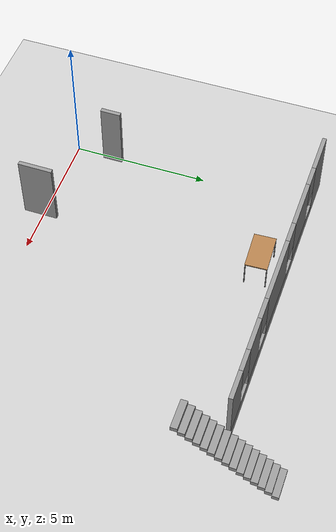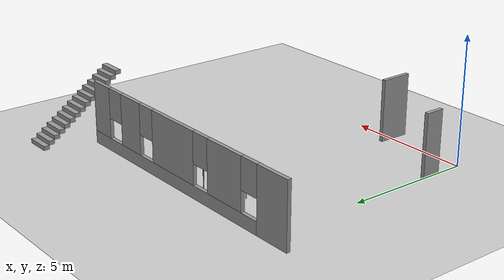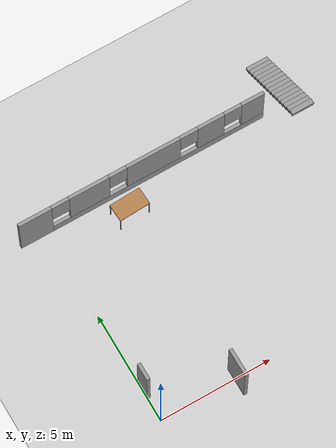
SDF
<sdf version="1.6">
 <world name="default">
  <model name="ground_plane">
   <static>1</static>
   <link name="link">
    <collision name="collision">
     <geometry><plane><normal>0 0 1</normal><size>100 100</size></plane></geometry>
     <surface><friction><ode><mu>100</mu><mu2>50</mu2></ode></friction></surface>
    </collision>
    <visual name="visual">
     <cast_shadows>0</cast_shadows>
     <geometry><plane><normal>0 0 1</normal><size>100 100</size></plane></geometry>
     <material>
      <script><uri>file://media/materials/scripts/gazebo.material</uri><name>Gazebo/Grey</name></script>
     </material>
    </visual>
   </link>
  </model>
  <model name="pared_lab">
   <pose>4.41876 9.09094 0 0 -0 0</pose>
   <link name="Wall_5">
    <visual name="Wall_5_Visual_0">
     <pose>-4.88226 0 1.25 0 -0 0</pose>
     <geometry><box><size>1.48549 0.15 2.5</size></box></geometry>
     <material>
      <script><uri>file://media/materials/scripts/gazebo.material</uri><name>Gazebo/Grey</name></script>
      <ambient>1 1 1 1</ambient>
     </material>
    </visual>
    <collision name="Wall_5_Collision_0">
     <geometry><box><size>1.48549 0.15 2.5</size></box></geometry>
     <pose>-4.88226 0 1.25 0 -0 0</pose>
    </collision>
    <visual name="Wall_5_Visual_1">
     <pose>0.742744 0 0.25 0 -0 0</pose>
     <geometry><box><size>9.76451 0.15 0.5</size></box></geometry>
     <material>
      <script><uri>file://media/materials/scripts/gazebo.material</uri><name>Gazebo/Grey</name></script>
      <ambient>1 1 1 1</ambient>
     </material>
    </visual>
    <collision name="Wall_5_Collision_1">
     <geometry><box><size>9.76451 0.15 0.5</size></box></geometry>
     <pose>0.742744 0 0.25 0 -0 0</pose>
    </collision>
    <visual name="Wall_5_Visual_2">
     <pose>-2.4287 0 1.5 0 -0 0</pose>
     <geometry><box><size>1.82162 0.15 2</size></box></geometry>
     <material>
      <script><uri>file://media/materials/scripts/gazebo.material</uri><name>Gazebo/Grey</name></script>
      <ambient>1 1 1 1</ambient>
     </material>
    </visual>
    <collision name="Wall_5_Collision_2">
     <geometry><box><size>1.82162 0.15 2</size></box></geometry>
     <pose>-2.4287 0 1.5 0 -0 0</pose>
    </collision>
    <visual name="Wall_5_Visual_3">
     <pose>0.513937 0 1.5 0 -0 0</pose>
     <geometry><box><size>2.46365 0.15 2</size></box></geometry>
     <material>
      <script><uri>file://media/materials/scripts/gazebo.material</uri><name>Gazebo/Grey</name></script>
      <ambient>1 1 1 1</ambient>
     </material>
    </visual>
    <collision name="Wall_5_Collision_3">
     <geometry><box><size>2.46365 0.15 2</size></box></geometry>
     <pose>0.513937 0 1.5 0 -0 0</pose>
    </collision>
    <visual name="Wall_5_Visual_4">
     <pose>3.16231 0 1.5 0 -0 0</pose>
     <geometry><box><size>1.2331 0.15 2</size></box></geometry>
     <material>
      <script><uri>file://media/materials/scripts/gazebo.material</uri><name>Gazebo/Grey</name></script>
      <ambient>1 1 1 1</ambient>
     </material>
    </visual>
    <collision name="Wall_5_Collision_4">
     <geometry><box><size>1.2331 0.15 2</size></box></geometry>
     <pose>3.16231 0 1.5 0 -0 0</pose>
    </collision>
    <visual name="Wall_5_Visual_5">
     <pose>5.10193 0 1.5 0 -0 0</pose>
     <geometry><box><size>1.04614 0.15 2</size></box></geometry>
     <material>
      <script><uri>file://media/materials/scripts/gazebo.material</uri><name>Gazebo/Grey</name></script>
      <ambient>1 1 1 1</ambient>
     </material>
    </visual>
    <collision name="Wall_5_Collision_5">
     <geometry><box><size>1.04614 0.15 2</size></box></geometry>
     <pose>5.10193 0 1.5 0 -0 0</pose>
    </collision>
    <visual name="Wall_5_Visual_6">
     <pose>-3.73951 0 1.9 0 -0 0</pose>
     <geometry><box><size>0.8 0.15 1.2</size></box></geometry>
     <material>
      <script><uri>file://media/materials/scripts/gazebo.material</uri><name>Gazebo/Grey</name></script>
      <ambient>1 1 1 1</ambient>
     </material>
    </visual>
    <collision name="Wall_5_Collision_6">
     <geometry><box><size>0.8 0.15 1.2</size></box></geometry>
     <pose>-3.73951 0 1.9 0 -0 0</pose>
    </collision>
    <visual name="Wall_5_Visual_7">
     <pose>-1.11789 0 1.9 0 -0 0</pose>
     <geometry><box><size>0.8 0.15 1.2</size></box></geometry>
     <material>
      <script><uri>file://media/materials/scripts/gazebo.material</uri><name>Gazebo/Grey</name></script>
      <ambient>1 1 1 1</ambient>
     </material>
    </visual>
    <collision name="Wall_5_Collision_7">
     <geometry><box><size>0.8 0.15 1.2</size></box></geometry>
     <pose>-1.11789 0 1.9 0 -0 0</pose>
    </collision>
    <visual name="Wall_5_Visual_8">
     <pose>2.14576 0 1.9 0 -0 0</pose>
     <geometry><box><size>0.8 0.15 1.2</size></box></geometry>
     <material>
      <script><uri>file://media/materials/scripts/gazebo.material</uri><name>Gazebo/Grey</name></script>
      <ambient>1 1 1 1</ambient>
     </material>
    </visual>
    <collision name="Wall_5_Collision_8">
     <geometry><box><size>0.8 0.15 1.2</size></box></geometry>
     <pose>2.14576 0 1.9 0 -0 0</pose>
    </collision>
    <visual name="Wall_5_Visual_9">
     <pose>4.17886 0 1.9 0 -0 0</pose>
     <geometry><box><size>0.8 0.15 1.2</size></box></geometry>
     <material>
      <script><uri>file://media/materials/scripts/gazebo.material</uri><name>Gazebo/Grey</name></script>
      <ambient>1 1 1 1</ambient>
     </material>
    </visual>
    <collision name="Wall_5_Collision_9">
     <geometry><box><size>0.8 0.15 1.2</size></box></geometry>
     <pose>4.17886 0 1.9 0 -0 0</pose>
    </collision>
   </link>
   <static>1</static>
  </model>
  <model name="table_clone_1">
   <static>0</static>
   <link name="link">
    <collision name="surface">
     <pose>0 0 1 0 -0 0</pose>
     <geometry><box><size>1.5 0.8 0.03</size></box></geometry>
     <surface><friction><ode><mu>0.6</mu><mu2>0.6</mu2></ode></friction></surface>
    </collision>
    <visual name="visual1">
     <pose>0 0 1 0 -0 0</pose>
     <geometry><box><size>1.4 0.8 0.04</size></box></geometry>
     <material>
      <script><uri>file://media/materials/scripts/gazebo.material</uri><name>Gazebo/Wood</name></script>
     </material>
    </visual>
    <collision name="front_left_leg">
     <pose>0.68 0.38 0.5 0 -0 0</pose>
     <geometry><cylinder><radius>0.02</radius><length>1</length></cylinder></geometry>
    </collision>
    <visual name="front_left_leg">
     <pose>0.68 0.38 0.5 0 -0 0</pose>
     <geometry><cylinder><radius>0.02</radius><length>1</length></cylinder></geometry>
     <material>
      <script><uri>file://media/materials/scripts/gazebo.material</uri><name>Gazebo/Grey</name></script>
     </material>
    </visual>
    <collision name="front_right_leg">
     <pose>0.68 -0.38 0.5 0 -0 0</pose>
     <geometry><cylinder><radius>0.02</radius><length>1</length></cylinder></geometry>
    </collision>
    <visual name="front_right_leg">
     <pose>0.68 -0.38 0.5 0 -0 0</pose>
     <geometry><cylinder><radius>0.02</radius><length>1</length></cylinder></geometry>
     <material>
      <script><uri>file://media/materials/scripts/gazebo.material</uri><name>Gazebo/Grey</name></script>
     </material>
    </visual>
    <collision name="back_right_leg">
     <pose>-0.68 -0.38 0.5 0 -0 0</pose>
     <geometry><cylinder><radius>0.02</radius><length>1</length></cylinder></geometry>
    </collision>
    <visual name="back_right_leg">
     <pose>-0.68 -0.38 0.5 0 -0 0</pose>
     <geometry><cylinder><radius>0.02</radius><length>1</length></cylinder></geometry>
     <material>
      <script><uri>file://media/materials/scripts/gazebo.material</uri><name>Gazebo/Grey</name></script>
     </material>
    </visual>
    <collision name="back_left_leg">
     <pose>-0.68 0.38 0.5 0 -0 0</pose>
     <geometry><cylinder><radius>0.02</radius><length>1</length></cylinder></geometry>
    </collision>
    <visual name="back_left_leg">
     <pose>-0.68 0.38 0.5 0 -0 0</pose>
     <geometry><cylinder><radius>0.02</radius><length>1</length></cylinder></geometry>
     <material>
      <script><uri>file://media/materials/scripts/gazebo.material</uri><name>Gazebo/Grey</name></script>
     </material>
    </visual>
    <inertial>
     <inertia><ixx>1</ixx><ixy>0</ixy><ixz>0</ixz><iyy>1</iyy><iyz>0</iyz><izz>1</izz></inertia>
     <mass>1</mass>
    </inertial>
   </link>
   <pose>3.2962 8.13733 -1e-06 0 1e-06 0.048714</pose>
  </model>
  <model name="paredes_simplepilab_0">
   <link name="Stairs_0">
    <visual name="Stairs_0_Visual_0">
     <pose>6.50578 5.54062 0.083333 0 -0 0</pose>
     <geometry><box><size>1 0.233333 0.166667</size></box></geometry>
     <material>
      <script><uri>file://media/materials/scripts/gazebo.material</uri><name>Gazebo/Grey</name></script>
      <ambient>1 1 1 1</ambient>
      <diffuse>0.7 0.7 0.7 1</diffuse>
      <specular>0.01 0.01 0.01 1</specular>
      <emissive>0 0 0 1</emissive>
     </material>
    </visual>
    <visual name="Stairs_0_Visual_1">
     <pose>6.50578 5.30728 0.25 0 -0 0</pose>
     <geometry><box><size>1 0.233333 0.166667</size></box></geometry>
     <material>
      <script><uri>file://media/materials/scripts/gazebo.material</uri><name>Gazebo/Grey</name></script>
      <ambient>1 1 1 1</ambient>
      <diffuse>0.7 0.7 0.7 1</diffuse>
      <specular>0.01 0.01 0.01 1</specular>
      <emissive>0 0 0 1</emissive>
     </material>
    </visual>
    <visual name="Stairs_0_Visual_2">
     <pose>6.50578 5.07395 0.416667 0 -0 0</pose>
     <geometry><box><size>1 0.233333 0.166667</size></box></geometry>
     <material>
      <script><uri>file://media/materials/scripts/gazebo.material</uri><name>Gazebo/Grey</name></script>
      <ambient>1 1 1 1</ambient>
      <diffuse>0.7 0.7 0.7 1</diffuse>
      <specular>0.01 0.01 0.01 1</specular>
      <emissive>0 0 0 1</emissive>
     </material>
    </visual>
    <visual name="Stairs_0_Visual_3">
     <pose>6.50578 4.84062 0.583333 0 -0 0</pose>
     <geometry><box><size>1 0.233333 0.166667</size></box></geometry>
     <material>
      <script><uri>file://media/materials/scripts/gazebo.material</uri><name>Gazebo/Grey</name></script>
      <ambient>1 1 1 1</ambient>
      <diffuse>0.7 0.7 0.7 1</diffuse>
      <specular>0.01 0.01 0.01 1</specular>
      <emissive>0 0 0 1</emissive>
     </material>
    </visual>
    <visual name="Stairs_0_Visual_4">
     <pose>6.50578 4.60728 0.75 0 -0 0</pose>
     <geometry><box><size>1 0.233333 0.166667</size></box></geometry>
     <material>
      <script><uri>file://media/materials/scripts/gazebo.material</uri><name>Gazebo/Grey</name></script>
      <ambient>1 1 1 1</ambient>
      <diffuse>0.7 0.7 0.7 1</diffuse>
      <specular>0.01 0.01 0.01 1</specular>
      <emissive>0 0 0 1</emissive>
     </material>
    </visual>
    <visual name="Stairs_0_Visual_5">
     <pose>6.50578 4.37395 0.916667 0 -0 0</pose>
     <geometry><box><size>1 0.233333 0.166667</size></box></geometry>
     <material>
      <script><uri>file://media/materials/scripts/gazebo.material</uri><name>Gazebo/Grey</name></script>
      <ambient>1 1 1 1</ambient>
      <diffuse>0.7 0.7 0.7 1</diffuse>
      <specular>0.01 0.01 0.01 1</specular>
      <emissive>0 0 0 1</emissive>
     </material>
    </visual>
    <visual name="Stairs_0_Visual_6">
     <pose>6.50578 4.14062 1.08333 0 -0 0</pose>
     <geometry><box><size>1 0.233333 0.166667</size></box></geometry>
     <material>
      <script><uri>file://media/materials/scripts/gazebo.material</uri><name>Gazebo/Grey</name></script>
      <ambient>1 1 1 1</ambient>
      <diffuse>0.7 0.7 0.7 1</diffuse>
      <specular>0.01 0.01 0.01 1</specular>
      <emissive>0 0 0 1</emissive>
     </material>
    </visual>
    <visual name="Stairs_0_Visual_7">
     <pose>6.50578 3.90728 1.25 0 -0 0</pose>
     <geometry><box><size>1 0.233333 0.166667</size></box></geometry>
     <material>
      <script><uri>file://media/materials/scripts/gazebo.material</uri><name>Gazebo/Grey</name></script>
      <ambient>1 1 1 1</ambient>
      <diffuse>0.7 0.7 0.7 1</diffuse>
      <specular>0.01 0.01 0.01 1</specular>
      <emissive>0 0 0 1</emissive>
     </material>
    </visual>
    <visual name="Stairs_0_Visual_8">
     <pose>6.50578 3.67395 1.41667 0 -0 0</pose>
     <geometry><box><size>1 0.233333 0.166667</size></box></geometry>
     <material>
      <script><uri>file://media/materials/scripts/gazebo.material</uri><name>Gazebo/Grey</name></script>
      <ambient>1 1 1 1</ambient>
      <diffuse>0.7 0.7 0.7 1</diffuse>
      <specular>0.01 0.01 0.01 1</specular>
      <emissive>0 0 0 1</emissive>
     </material>
    </visual>
    <visual name="Stairs_0_Visual_10">
     <pose>6.50578 3.20729 1.75 0 -0 0</pose>
     <geometry><box><size>1 0.233333 0.166667</size></box></geometry>
     <material>
      <script><uri>file://media/materials/scripts/gazebo.material</uri><name>Gazebo/Grey</name></script>
      <ambient>1 1 1 1</ambient>
      <diffuse>0.7 0.7 0.7 1</diffuse>
      <specular>0.01 0.01 0.01 1</specular>
      <emissive>0 0 0 1</emissive>
     </material>
    </visual>
    <visual name="Stairs_0_Visual_9">
     <pose>6.50578 3.44062 1.58333 0 -0 0</pose>
     <geometry><box><size>1 0.233333 0.166667</size></box></geometry>
     <material>
      <script><uri>file://media/materials/scripts/gazebo.material</uri><name>Gazebo/Grey</name></script>
      <ambient>1 1 1 1</ambient>
      <diffuse>0.7 0.7 0.7 1</diffuse>
      <specular>0.01 0.01 0.01 1</specular>
      <emissive>0 0 0 1</emissive>
     </material>
    </visual>
    <visual name="Stairs_0_Visual_11">
     <pose>6.50578 2.97395 1.91667 0 -0 0</pose>
     <geometry><box><size>1 0.233333 0.166667</size></box></geometry>
     <material>
      <script><uri>file://media/materials/scripts/gazebo.material</uri><name>Gazebo/Grey</name></script>
      <ambient>1 1 1 1</ambient>
      <diffuse>0.7 0.7 0.7 1</diffuse>
      <specular>0.01 0.01 0.01 1</specular>
      <emissive>0 0 0 1</emissive>
     </material>
    </visual>
    <visual name="Stairs_0_Visual_12">
     <pose>6.50578 2.74062 2.08333 0 -0 0</pose>
     <geometry><box><size>1 0.233333 0.166667</size></box></geometry>
     <material>
      <script><uri>file://media/materials/scripts/gazebo.material</uri><name>Gazebo/Grey</name></script>
      <ambient>1 1 1 1</ambient>
      <diffuse>0.7 0.7 0.7 1</diffuse>
      <specular>0.01 0.01 0.01 1</specular>
      <emissive>0 0 0 1</emissive>
     </material>
    </visual>
    <visual name="Stairs_0_Visual_13">
     <pose>6.50578 2.50728 2.25 0 -0 0</pose>
     <geometry><box><size>1 0.233333 0.166667</size></box></geometry>
     <material>
      <script><uri>file://media/materials/scripts/gazebo.material</uri><name>Gazebo/Grey</name></script>
      <ambient>1 1 1 1</ambient>
      <diffuse>0.7 0.7 0.7 1</diffuse>
      <specular>0.01 0.01 0.01 1</specular>
      <emissive>0 0 0 1</emissive>
     </material>
    </visual>
    <visual name="Stairs_0_Visual_14">
     <pose>6.50578 2.27395 2.41667 0 -0 0</pose>
     <geometry><box><size>1 0.233333 0.166667</size></box></geometry>
     <material>
      <script><uri>file://media/materials/scripts/gazebo.material</uri><name>Gazebo/Grey</name></script>
      <ambient>1 1 1 1</ambient>
      <diffuse>0.7 0.7 0.7 1</diffuse>
      <specular>0.01 0.01 0.01 1</specular>
      <emissive>0 0 0 1</emissive>
     </material>
    </visual>
    <collision name="Stairs_0_Collision_13">
     <pose>6.50578 2.50728 2.25 0 -0 0</pose>
     <geometry><box><size>1 0.233333 0.166667</size></box></geometry>
     <surface>
      <friction>
       <ode><mu>1</mu><mu2>1</mu2><fdir1>0 0 0</fdir1><slip1>0</slip1><slip2>0</slip2></ode>
       <torsional>
        <coefficient>1</coefficient>
        <patch_radius>0</patch_radius>
        <surface_radius>0</surface_radius>
        <use_patch_radius>1</use_patch_radius>
        <ode><slip>0</slip></ode>
       </torsional>
      </friction>
      <bounce><restitution_coefficient>0</restitution_coefficient><threshold>1e+06</threshold></bounce>
      <contact>
       <collide_without_contact>0</collide_without_contact>
       <collide_without_contact_bitmask>1</collide_without_contact_bitmask>
       <collide_bitmask>1</collide_bitmask>
       <ode>
        <soft_cfm>0</soft_cfm>
        <soft_erp>0.2</soft_erp>
        <kp>1e+13</kp>
        <kd>1</kd>
        <max_vel>0.01</max_vel>
        <min_depth>0</min_depth>
       </ode>
       <bullet>
        <split_impulse>1</split_impulse>
        <split_impulse_penetration_threshold>-0.01</split_impulse_penetration_threshold>
        <soft_cfm>0</soft_cfm>
        <soft_erp>0.2</soft_erp>
        <kp>1e+13</kp>
        <kd>1</kd>
       </bullet>
      </contact>
     </surface>
    </collision>
    <collision name="Stairs_0_Collision_0">
     <pose>6.50578 5.54062 0.083333 0 -0 0</pose>
     <geometry><box><size>1 0.233333 0.166667</size></box></geometry>
     <surface>
      <friction>
       <ode><mu>1</mu><mu2>1</mu2><fdir1>0 0 0</fdir1><slip1>0</slip1><slip2>0</slip2></ode>
       <torsional>
        <coefficient>1</coefficient>
        <patch_radius>0</patch_radius>
        <surface_radius>0</surface_radius>
        <use_patch_radius>1</use_patch_radius>
        <ode><slip>0</slip></ode>
       </torsional>
      </friction>
      <bounce><restitution_coefficient>0</restitution_coefficient><threshold>1e+06</threshold></bounce>
      <contact>
       <collide_without_contact>0</collide_without_contact>
       <collide_without_contact_bitmask>1</collide_without_contact_bitmask>
       <collide_bitmask>1</collide_bitmask>
       <ode>
        <soft_cfm>0</soft_cfm>
        <soft_erp>0.2</soft_erp>
        <kp>1e+13</kp>
        <kd>1</kd>
        <max_vel>0.01</max_vel>
        <min_depth>0</min_depth>
       </ode>
       <bullet>
        <split_impulse>1</split_impulse>
        <split_impulse_penetration_threshold>-0.01</split_impulse_penetration_threshold>
        <soft_cfm>0</soft_cfm>
        <soft_erp>0.2</soft_erp>
        <kp>1e+13</kp>
        <kd>1</kd>
       </bullet>
      </contact>
     </surface>
    </collision>
    <collision name="Stairs_0_Collision_1">
     <pose>6.50578 5.30728 0.25 0 -0 0</pose>
     <geometry><box><size>1 0.233333 0.166667</size></box></geometry>
     <surface>
      <friction>
       <ode><mu>1</mu><mu2>1</mu2><fdir1>0 0 0</fdir1><slip1>0</slip1><slip2>0</slip2></ode>
       <torsional>
        <coefficient>1</coefficient>
        <patch_radius>0</patch_radius>
        <surface_radius>0</surface_radius>
        <use_patch_radius>1</use_patch_radius>
        <ode><slip>0</slip></ode>
       </torsional>
      </friction>
      <bounce><restitution_coefficient>0</restitution_coefficient><threshold>1e+06</threshold></bounce>
      <contact>
       <collide_without_contact>0</collide_without_contact>
       <collide_without_contact_bitmask>1</collide_without_contact_bitmask>
       <collide_bitmask>1</collide_bitmask>
       <ode>
        <soft_cfm>0</soft_cfm>
        <soft_erp>0.2</soft_erp>
        <kp>1e+13</kp>
        <kd>1</kd>
        <max_vel>0.01</max_vel>
        <min_depth>0</min_depth>
       </ode>
       <bullet>
        <split_impulse>1</split_impulse>
        <split_impulse_penetration_threshold>-0.01</split_impulse_penetration_threshold>
        <soft_cfm>0</soft_cfm>
        <soft_erp>0.2</soft_erp>
        <kp>1e+13</kp>
        <kd>1</kd>
       </bullet>
      </contact>
     </surface>
    </collision>
    <collision name="Stairs_0_Collision_2">
     <pose>6.50578 5.07395 0.416667 0 -0 0</pose>
     <geometry><box><size>1 0.233333 0.166667</size></box></geometry>
     <surface>
      <friction>
       <ode><mu>1</mu><mu2>1</mu2><fdir1>0 0 0</fdir1><slip1>0</slip1><slip2>0</slip2></ode>
       <torsional>
        <coefficient>1</coefficient>
        <patch_radius>0</patch_radius>
        <surface_radius>0</surface_radius>
        <use_patch_radius>1</use_patch_radius>
        <ode><slip>0</slip></ode>
       </torsional>
      </friction>
      <bounce><restitution_coefficient>0</restitution_coefficient><threshold>1e+06</threshold></bounce>
      <contact>
       <collide_without_contact>0</collide_without_contact>
       <collide_without_contact_bitmask>1</collide_without_contact_bitmask>
       <collide_bitmask>1</collide_bitmask>
       <ode>
        <soft_cfm>0</soft_cfm>
        <soft_erp>0.2</soft_erp>
        <kp>1e+13</kp>
        <kd>1</kd>
        <max_vel>0.01</max_vel>
        <min_depth>0</min_depth>
       </ode>
       <bullet>
        <split_impulse>1</split_impulse>
        <split_impulse_penetration_threshold>-0.01</split_impulse_penetration_threshold>
        <soft_cfm>0</soft_cfm>
        <soft_erp>0.2</soft_erp>
        <kp>1e+13</kp>
        <kd>1</kd>
       </bullet>
      </contact>
     </surface>
    </collision>
    <collision name="Stairs_0_Collision_3">
     <pose>6.50578 4.84062 0.583333 0 -0 0</pose>
     <geometry><box><size>1 0.233333 0.166667</size></box></geometry>
     <surface>
      <friction>
       <ode><mu>1</mu><mu2>1</mu2><fdir1>0 0 0</fdir1><slip1>0</slip1><slip2>0</slip2></ode>
       <torsional>
        <coefficient>1</coefficient>
        <patch_radius>0</patch_radius>
        <surface_radius>0</surface_radius>
        <use_patch_radius>1</use_patch_radius>
        <ode><slip>0</slip></ode>
       </torsional>
      </friction>
      <bounce><restitution_coefficient>0</restitution_coefficient><threshold>1e+06</threshold></bounce>
      <contact>
       <collide_without_contact>0</collide_without_contact>
       <collide_without_contact_bitmask>1</collide_without_contact_bitmask>
       <collide_bitmask>1</collide_bitmask>
       <ode>
        <soft_cfm>0</soft_cfm>
        <soft_erp>0.2</soft_erp>
        <kp>1e+13</kp>
        <kd>1</kd>
        <max_vel>0.01</max_vel>
        <min_depth>0</min_depth>
       </ode>
       <bullet>
        <split_impulse>1</split_impulse>
        <split_impulse_penetration_threshold>-0.01</split_impulse_penetration_threshold>
        <soft_cfm>0</soft_cfm>
        <soft_erp>0.2</soft_erp>
        <kp>1e+13</kp>
        <kd>1</kd>
       </bullet>
      </contact>
     </surface>
    </collision>
    <collision name="Stairs_0_Collision_4">
     <pose>6.50578 4.60728 0.75 0 -0 0</pose>
     <geometry><box><size>1 0.233333 0.166667</size></box></geometry>
     <surface>
      <friction>
       <ode><mu>1</mu><mu2>1</mu2><fdir1>0 0 0</fdir1><slip1>0</slip1><slip2>0</slip2></ode>
       <torsional>
        <coefficient>1</coefficient>
        <patch_radius>0</patch_radius>
        <surface_radius>0</surface_radius>
        <use_patch_radius>1</use_patch_radius>
        <ode><slip>0</slip></ode>
       </torsional>
      </friction>
      <bounce><restitution_coefficient>0</restitution_coefficient><threshold>1e+06</threshold></bounce>
      <contact>
       <collide_without_contact>0</collide_without_contact>
       <collide_without_contact_bitmask>1</collide_without_contact_bitmask>
       <collide_bitmask>1</collide_bitmask>
       <ode>
        <soft_cfm>0</soft_cfm>
        <soft_erp>0.2</soft_erp>
        <kp>1e+13</kp>
        <kd>1</kd>
        <max_vel>0.01</max_vel>
        <min_depth>0</min_depth>
       </ode>
       <bullet>
        <split_impulse>1</split_impulse>
        <split_impulse_penetration_threshold>-0.01</split_impulse_penetration_threshold>
        <soft_cfm>0</soft_cfm>
        <soft_erp>0.2</soft_erp>
        <kp>1e+13</kp>
        <kd>1</kd>
       </bullet>
      </contact>
     </surface>
    </collision>
    <collision name="Stairs_0_Collision_9">
     <pose>6.50578 3.44062 1.58333 0 -0 0</pose>
     <geometry><box><size>1 0.233333 0.166667</size></box></geometry>
     <surface>
      <friction>
       <ode><mu>1</mu><mu2>1</mu2><fdir1>0 0 0</fdir1><slip1>0</slip1><slip2>0</slip2></ode>
       <torsional>
        <coefficient>1</coefficient>
        <patch_radius>0</patch_radius>
        <surface_radius>0</surface_radius>
        <use_patch_radius>1</use_patch_radius>
        <ode><slip>0</slip></ode>
       </torsional>
      </friction>
      <bounce><restitution_coefficient>0</restitution_coefficient><threshold>1e+06</threshold></bounce>
      <contact>
       <collide_without_contact>0</collide_without_contact>
       <collide_without_contact_bitmask>1</collide_without_contact_bitmask>
       <collide_bitmask>1</collide_bitmask>
       <ode>
        <soft_cfm>0</soft_cfm>
        <soft_erp>0.2</soft_erp>
        <kp>1e+13</kp>
        <kd>1</kd>
        <max_vel>0.01</max_vel>
        <min_depth>0</min_depth>
       </ode>
       <bullet>
        <split_impulse>1</split_impulse>
        <split_impulse_penetration_threshold>-0.01</split_impulse_penetration_threshold>
        <soft_cfm>0</soft_cfm>
        <soft_erp>0.2</soft_erp>
        <kp>1e+13</kp>
        <kd>1</kd>
       </bullet>
      </contact>
     </surface>
    </collision>
    <collision name="Stairs_0_Collision_5">
     <pose>6.50578 4.37395 0.916667 0 -0 0</pose>
     <geometry><box><size>1 0.233333 0.166667</size></box></geometry>
     <surface>
      <friction>
       <ode><mu>1</mu><mu2>1</mu2><fdir1>0 0 0</fdir1><slip1>0</slip1><slip2>0</slip2></ode>
       <torsional>
        <coefficient>1</coefficient>
        <patch_radius>0</patch_radius>
        <surface_radius>0</surface_radius>
        <use_patch_radius>1</use_patch_radius>
        <ode><slip>0</slip></ode>
       </torsional>
      </friction>
      <bounce><restitution_coefficient>0</restitution_coefficient><threshold>1e+06</threshold></bounce>
      <contact>
       <collide_without_contact>0</collide_without_contact>
       <collide_without_contact_bitmask>1</collide_without_contact_bitmask>
       <collide_bitmask>1</collide_bitmask>
       <ode>
        <soft_cfm>0</soft_cfm>
        <soft_erp>0.2</soft_erp>
        <kp>1e+13</kp>
        <kd>1</kd>
        <max_vel>0.01</max_vel>
        <min_depth>0</min_depth>
       </ode>
       <bullet>
        <split_impulse>1</split_impulse>
        <split_impulse_penetration_threshold>-0.01</split_impulse_penetration_threshold>
        <soft_cfm>0</soft_cfm>
        <soft_erp>0.2</soft_erp>
        <kp>1e+13</kp>
        <kd>1</kd>
       </bullet>
      </contact>
     </surface>
    </collision>
    <collision name="Stairs_0_Collision_6">
     <pose>6.50578 4.14062 1.08333 0 -0 0</pose>
     <geometry><box><size>1 0.233333 0.166667</size></box></geometry>
     <surface>
      <friction>
       <ode><mu>1</mu><mu2>1</mu2><fdir1>0 0 0</fdir1><slip1>0</slip1><slip2>0</slip2></ode>
       <torsional>
        <coefficient>1</coefficient>
        <patch_radius>0</patch_radius>
        <surface_radius>0</surface_radius>
        <use_patch_radius>1</use_patch_radius>
        <ode><slip>0</slip></ode>
       </torsional>
      </friction>
      <bounce><restitution_coefficient>0</restitution_coefficient><threshold>1e+06</threshold></bounce>
      <contact>
       <collide_without_contact>0</collide_without_contact>
       <collide_without_contact_bitmask>1</collide_without_contact_bitmask>
       <collide_bitmask>1</collide_bitmask>
       <ode>
        <soft_cfm>0</soft_cfm>
        <soft_erp>0.2</soft_erp>
        <kp>1e+13</kp>
        <kd>1</kd>
        <max_vel>0.01</max_vel>
        <min_depth>0</min_depth>
       </ode>
       <bullet>
        <split_impulse>1</split_impulse>
        <split_impulse_penetration_threshold>-0.01</split_impulse_penetration_threshold>
        <soft_cfm>0</soft_cfm>
        <soft_erp>0.2</soft_erp>
        <kp>1e+13</kp>
        <kd>1</kd>
       </bullet>
      </contact>
     </surface>
    </collision>
    <collision name="Stairs_0_Collision_7">
     <pose>6.50578 3.90728 1.25 0 -0 0</pose>
     <geometry><box><size>1 0.233333 0.166667</size></box></geometry>
     <surface>
      <friction>
       <ode><mu>1</mu><mu2>1</mu2><fdir1>0 0 0</fdir1><slip1>0</slip1><slip2>0</slip2></ode>
       <torsional>
        <coefficient>1</coefficient>
        <patch_radius>0</patch_radius>
        <surface_radius>0</surface_radius>
        <use_patch_radius>1</use_patch_radius>
        <ode><slip>0</slip></ode>
       </torsional>
      </friction>
      <bounce><restitution_coefficient>0</restitution_coefficient><threshold>1e+06</threshold></bounce>
      <contact>
       <collide_without_contact>0</collide_without_contact>
       <collide_without_contact_bitmask>1</collide_without_contact_bitmask>
       <collide_bitmask>1</collide_bitmask>
       <ode>
        <soft_cfm>0</soft_cfm>
        <soft_erp>0.2</soft_erp>
        <kp>1e+13</kp>
        <kd>1</kd>
        <max_vel>0.01</max_vel>
        <min_depth>0</min_depth>
       </ode>
       <bullet>
        <split_impulse>1</split_impulse>
        <split_impulse_penetration_threshold>-0.01</split_impulse_penetration_threshold>
        <soft_cfm>0</soft_cfm>
        <soft_erp>0.2</soft_erp>
        <kp>1e+13</kp>
        <kd>1</kd>
       </bullet>
      </contact>
     </surface>
    </collision>
    <collision name="Stairs_0_Collision_8">
     <pose>6.50578 3.67395 1.41667 0 -0 0</pose>
     <geometry><box><size>1 0.233333 0.166667</size></box></geometry>
     <surface>
      <friction>
       <ode><mu>1</mu><mu2>1</mu2><fdir1>0 0 0</fdir1><slip1>0</slip1><slip2>0</slip2></ode>
       <torsional>
        <coefficient>1</coefficient>
        <patch_radius>0</patch_radius>
        <surface_radius>0</surface_radius>
        <use_patch_radius>1</use_patch_radius>
        <ode><slip>0</slip></ode>
       </torsional>
      </friction>
      <bounce><restitution_coefficient>0</restitution_coefficient><threshold>1e+06</threshold></bounce>
      <contact>
       <collide_without_contact>0</collide_without_contact>
       <collide_without_contact_bitmask>1</collide_without_contact_bitmask>
       <collide_bitmask>1</collide_bitmask>
       <ode>
        <soft_cfm>0</soft_cfm>
        <soft_erp>0.2</soft_erp>
        <kp>1e+13</kp>
        <kd>1</kd>
        <max_vel>0.01</max_vel>
        <min_depth>0</min_depth>
       </ode>
       <bullet>
        <split_impulse>1</split_impulse>
        <split_impulse_penetration_threshold>-0.01</split_impulse_penetration_threshold>
        <soft_cfm>0</soft_cfm>
        <soft_erp>0.2</soft_erp>
        <kp>1e+13</kp>
        <kd>1</kd>
       </bullet>
      </contact>
     </surface>
    </collision>
    <collision name="Stairs_0_Collision_11">
     <pose>6.50578 2.97395 1.91667 0 -0 0</pose>
     <geometry><box><size>1 0.233333 0.166667</size></box></geometry>
     <surface>
      <friction>
       <ode><mu>1</mu><mu2>1</mu2><fdir1>0 0 0</fdir1><slip1>0</slip1><slip2>0</slip2></ode>
       <torsional>
        <coefficient>1</coefficient>
        <patch_radius>0</patch_radius>
        <surface_radius>0</surface_radius>
        <use_patch_radius>1</use_patch_radius>
        <ode><slip>0</slip></ode>
       </torsional>
      </friction>
      <bounce><restitution_coefficient>0</restitution_coefficient><threshold>1e+06</threshold></bounce>
      <contact>
       <collide_without_contact>0</collide_without_contact>
       <collide_without_contact_bitmask>1</collide_without_contact_bitmask>
       <collide_bitmask>1</collide_bitmask>
       <ode>
        <soft_cfm>0</soft_cfm>
        <soft_erp>0.2</soft_erp>
        <kp>1e+13</kp>
        <kd>1</kd>
        <max_vel>0.01</max_vel>
        <min_depth>0</min_depth>
       </ode>
       <bullet>
        <split_impulse>1</split_impulse>
        <split_impulse_penetration_threshold>-0.01</split_impulse_penetration_threshold>
        <soft_cfm>0</soft_cfm>
        <soft_erp>0.2</soft_erp>
        <kp>1e+13</kp>
        <kd>1</kd>
       </bullet>
      </contact>
     </surface>
    </collision>
    <collision name="Stairs_0_Collision_10">
     <pose>6.50578 3.20729 1.75 0 -0 0</pose>
     <geometry><box><size>1 0.233333 0.166667</size></box></geometry>
     <surface>
      <friction>
       <ode><mu>1</mu><mu2>1</mu2><fdir1>0 0 0</fdir1><slip1>0</slip1><slip2>0</slip2></ode>
       <torsional>
        <coefficient>1</coefficient>
        <patch_radius>0</patch_radius>
        <surface_radius>0</surface_radius>
        <use_patch_radius>1</use_patch_radius>
        <ode><slip>0</slip></ode>
       </torsional>
      </friction>
      <bounce><restitution_coefficient>0</restitution_coefficient><threshold>1e+06</threshold></bounce>
      <contact>
       <collide_without_contact>0</collide_without_contact>
       <collide_without_contact_bitmask>1</collide_without_contact_bitmask>
       <collide_bitmask>1</collide_bitmask>
       <ode>
        <soft_cfm>0</soft_cfm>
        <soft_erp>0.2</soft_erp>
        <kp>1e+13</kp>
        <kd>1</kd>
        <max_vel>0.01</max_vel>
        <min_depth>0</min_depth>
       </ode>
       <bullet>
        <split_impulse>1</split_impulse>
        <split_impulse_penetration_threshold>-0.01</split_impulse_penetration_threshold>
        <soft_cfm>0</soft_cfm>
        <soft_erp>0.2</soft_erp>
        <kp>1e+13</kp>
        <kd>1</kd>
       </bullet>
      </contact>
     </surface>
    </collision>
    <collision name="Stairs_0_Collision_12">
     <pose>6.50578 2.74062 2.08333 0 -0 0</pose>
     <geometry><box><size>1 0.233333 0.166667</size></box></geometry>
     <surface>
      <friction>
       <ode><mu>1</mu><mu2>1</mu2><fdir1>0 0 0</fdir1><slip1>0</slip1><slip2>0</slip2></ode>
       <torsional>
        <coefficient>1</coefficient>
        <patch_radius>0</patch_radius>
        <surface_radius>0</surface_radius>
        <use_patch_radius>1</use_patch_radius>
        <ode><slip>0</slip></ode>
       </torsional>
      </friction>
      <bounce><restitution_coefficient>0</restitution_coefficient><threshold>1e+06</threshold></bounce>
      <contact>
       <collide_without_contact>0</collide_without_contact>
       <collide_without_contact_bitmask>1</collide_without_contact_bitmask>
       <collide_bitmask>1</collide_bitmask>
       <ode>
        <soft_cfm>0</soft_cfm>
        <soft_erp>0.2</soft_erp>
        <kp>1e+13</kp>
        <kd>1</kd>
        <max_vel>0.01</max_vel>
        <min_depth>0</min_depth>
       </ode>
       <bullet>
        <split_impulse>1</split_impulse>
        <split_impulse_penetration_threshold>-0.01</split_impulse_penetration_threshold>
        <soft_cfm>0</soft_cfm>
        <soft_erp>0.2</soft_erp>
        <kp>1e+13</kp>
        <kd>1</kd>
       </bullet>
      </contact>
     </surface>
    </collision>
    <collision name="Stairs_0_Collision_14">
     <pose>6.50578 2.27395 2.41667 0 -0 0</pose>
     <geometry><box><size>1 0.233333 0.166667</size></box></geometry>
     <surface>
      <friction>
       <ode><mu>1</mu><mu2>1</mu2><fdir1>0 0 0</fdir1><slip1>0</slip1><slip2>0</slip2></ode>
       <torsional>
        <coefficient>1</coefficient>
        <patch_radius>0</patch_radius>
        <surface_radius>0</surface_radius>
        <use_patch_radius>1</use_patch_radius>
        <ode><slip>0</slip></ode>
       </torsional>
      </friction>
      <bounce><restitution_coefficient>0</restitution_coefficient><threshold>1e+06</threshold></bounce>
      <contact>
       <collide_without_contact>0</collide_without_contact>
       <collide_without_contact_bitmask>1</collide_without_contact_bitmask>
       <collide_bitmask>1</collide_bitmask>
       <ode>
        <soft_cfm>0</soft_cfm>
        <soft_erp>0.2</soft_erp>
        <kp>1e+13</kp>
        <kd>1</kd>
        <max_vel>0.01</max_vel>
        <min_depth>0</min_depth>
       </ode>
       <bullet>
        <split_impulse>1</split_impulse>
        <split_impulse_penetration_threshold>-0.01</split_impulse_penetration_threshold>
        <soft_cfm>0</soft_cfm>
        <soft_erp>0.2</soft_erp>
        <kp>1e+13</kp>
        <kd>1</kd>
       </bullet>
      </contact>
     </surface>
    </collision>
   </link>
   <link name="Wall_13">
    <pose>-4.48078 -4.10971 0 0 0 -1.5708</pose>
    <visual name="Wall_13_Visual">
     <pose>0 0 1.25 0 -0 0</pose>
     <geometry><box><size>0.75 0.15 2.5</size></box></geometry>
     <material>
      <script><uri>file://media/materials/scripts/gazebo.material</uri><name>Gazebo/Grey</name></script>
      <ambient>1 1 1 1</ambient>
      <diffuse>0.7 0.7 0.7 1</diffuse>
      <specular>0.01 0.01 0.01 1</specular>
      <emissive>0 0 0 1</emissive>
     </material>
    </visual>
    <collision name="Wall_13_Collision">
     <pose>0 0 1.25 0 -0 0</pose>
     <geometry><box><size>0.75 0.15 2.5</size></box></geometry>
     <surface>
      <friction>
       <ode><mu>1</mu><mu2>1</mu2><fdir1>0 0 0</fdir1><slip1>0</slip1><slip2>0</slip2></ode>
       <torsional>
        <coefficient>1</coefficient>
        <patch_radius>0</patch_radius>
        <surface_radius>0</surface_radius>
        <use_patch_radius>1</use_patch_radius>
        <ode><slip>0</slip></ode>
       </torsional>
      </friction>
      <bounce><restitution_coefficient>0</restitution_coefficient><threshold>1e+06</threshold></bounce>
      <contact>
       <collide_without_contact>0</collide_without_contact>
       <collide_without_contact_bitmask>1</collide_without_contact_bitmask>
       <collide_bitmask>1</collide_bitmask>
       <ode>
        <soft_cfm>0</soft_cfm>
        <soft_erp>0.2</soft_erp>
        <kp>1e+13</kp>
        <kd>1</kd>
        <max_vel>0.01</max_vel>
        <min_depth>0</min_depth>
       </ode>
       <bullet>
        <split_impulse>1</split_impulse>
        <split_impulse_penetration_threshold>-0.01</split_impulse_penetration_threshold>
        <soft_cfm>0</soft_cfm>
        <soft_erp>0.2</soft_erp>
        <kp>1e+13</kp>
        <kd>1</kd>
       </bullet>
      </contact>
     </surface>
    </collision>
   </link>
   <link name="Wall_18">
    <pose>-1.11908 -5.64172 0 0 0 -1.5708</pose>
    <visual name="Wall_18_Visual">
     <pose>0 0 1.25 0 -0 0</pose>
     <geometry><box><size>1.25 0.15 2.5</size></box></geometry>
     <material>
      <script><uri>file://media/materials/scripts/gazebo.material</uri><name>Gazebo/Grey</name></script>
      <ambient>1 1 1 1</ambient>
      <diffuse>0.7 0.7 0.7 1</diffuse>
      <specular>0.01 0.01 0.01 1</specular>
      <emissive>0 0 0 1</emissive>
     </material>
    </visual>
    <collision name="Wall_18_Collision">
     <pose>0 0 1.25 0 -0 0</pose>
     <geometry><box><size>1.25 0.15 2.5</size></box></geometry>
     <surface>
      <friction>
       <ode><mu>1</mu><mu2>1</mu2><fdir1>0 0 0</fdir1><slip1>0</slip1><slip2>0</slip2></ode>
       <torsional>
        <coefficient>1</coefficient>
        <patch_radius>0</patch_radius>
        <surface_radius>0</surface_radius>
        <use_patch_radius>1</use_patch_radius>
        <ode><slip>0</slip></ode>
       </torsional>
      </friction>
      <bounce><restitution_coefficient>0</restitution_coefficient><threshold>1e+06</threshold></bounce>
      <contact>
       <collide_without_contact>0</collide_without_contact>
       <collide_without_contact_bitmask>1</collide_without_contact_bitmask>
       <collide_bitmask>1</collide_bitmask>
       <ode>
        <soft_cfm>0</soft_cfm>
        <soft_erp>0.2</soft_erp>
        <kp>1e+13</kp>
        <kd>1</kd>
        <max_vel>0.01</max_vel>
        <min_depth>0</min_depth>
       </ode>
       <bullet>
        <split_impulse>1</split_impulse>
        <split_impulse_penetration_threshold>-0.01</split_impulse_penetration_threshold>
        <soft_cfm>0</soft_cfm>
        <soft_erp>0.2</soft_erp>
        <kp>1e+13</kp>
        <kd>1</kd>
       </bullet>
      </contact>
     </surface>
    </collision>
   </link>
   <static>1</static>
   <pose>4.53146 5.52753 0 0 -0 0</pose>
  </model>
 </world>
</sdf>
